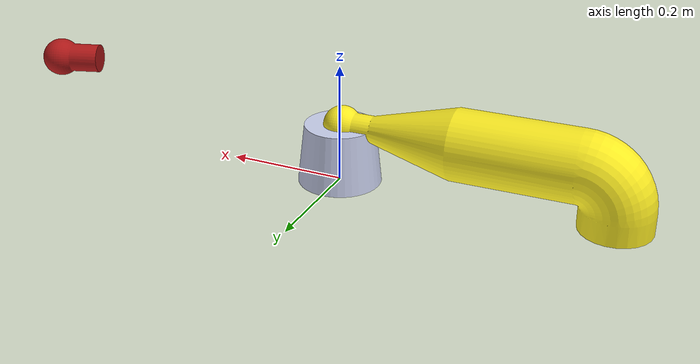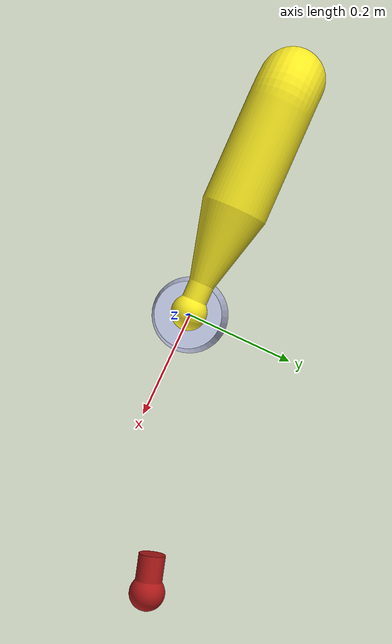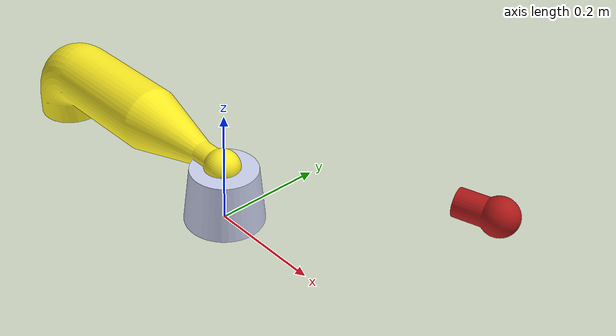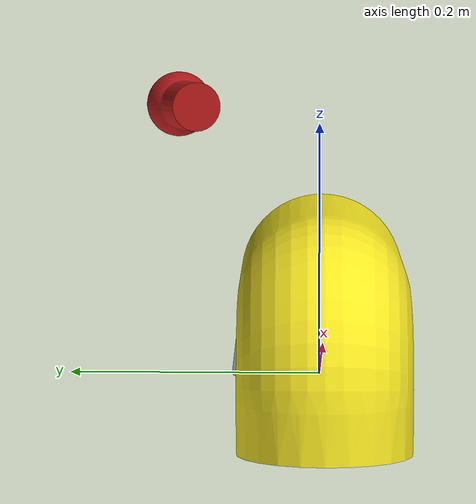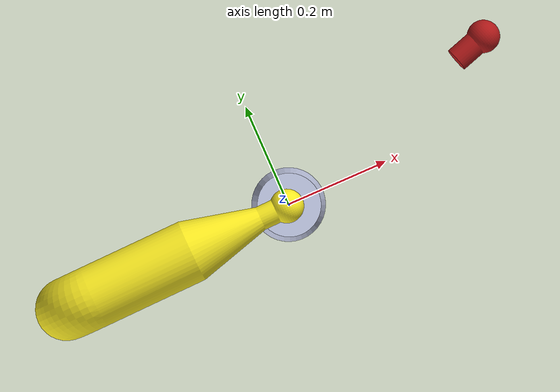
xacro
<?xml version="1.0" ?>
<robot name="onelink_gazebo" xmlns:xacro="http://wiki.ros.org/xacro">
  <xacro:include filename="$(find onelink_gazebo)/urdf/onelink_macro.xacro"/>

  <xacro:onelink_robot prefix=""/>

  <!-- Fix robot to Gazebo world -->
  <link name="world"/>
  <joint name="world-base_link-fixed" type="fixed">
    <parent link="world"/>
    <child link="base_link"/>
    <origin xyz="0.0 0.0 0.0" rpy="0.0 0.0 0.0" />
  </joint>
</robot>

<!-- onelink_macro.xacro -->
<robot xmlns:xacro="http://wiki.ros.org/xacro">
<xacro:include filename="$(find onelink_support)/urdf/onelink_macro.xacro"/>
<xacro:macro name="onelink_robot" params="prefix">
  <xacro:onelink prefix="${prefix}" />

  <!-- transmission list -->
  <transmission name="${prefix}tran1">
    <robotNamespace>/${prefix}</robotNamespace>
    <type>transmission_interface/SimpleTransmission</type>
    <joint name="${prefix}joint_1">
      <hardwareInterface>hardware_interface/PositionJointInterface</hardwareInterface>
    </joint>
    <actuator name="${prefix}motor1">
      <mechanicalReduction>1</mechanicalReduction>
    </actuator>
  </transmission>

  <gazebo reference="${prefix}base_link">
    <material>Gazebo/Yellow</material>
    <turnGravityOff>true</turnGravityOff>
  </gazebo>
  <gazebo reference="${prefix}link_1">
    <material>Gazebo/Yellow</material>
    <turnGravityOff>true</turnGravityOff>
  </gazebo>

  <gazebo>
    <plugin name="gazebo_ros_control" filename="libgazebo_ros_control.so">
      <robotNamespace>/${prefix}</robotNamespace>
      <robotSimType>gazebo_ros_control/DefaultRobotHWSim</robotSimType>
    </plugin>
  </gazebo>
  </xacro:macro>
</robot>

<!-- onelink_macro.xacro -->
<robot xmlns:xacro="http://wiki.ros.org/xacro">

  <xacro:macro name="onelink" params="prefix">
    <!-- links: main serial chain -->
  <link name="${prefix}base_link">
    <inertial>
      <origin xyz="8.7018E-07 2.7995E-08 0.047164" rpy="0 0 0" />
      <mass value="1.3101" />
      <inertia ixx="0.0024623" ixy="3.2088E-09" ixz="2.422E-09"
        			iyy="0.0024625" iyz="-4.6557E-09"
				izz="0.0027581" />
    </inertial>
    <visual>
      <origin xyz="0 0 0" rpy="0 0 0" />
      <geometry>
        <mesh filename="package://onelink_support/meshes/visual/base_link.STL" />
      </geometry>
      <material name="">
        <color rgba="0.79216 0.81961 0.93333 1" />
      </material>
    </visual>
    <collision>
      <origin xyz="0 0 0" rpy="0 0 0" />
      <geometry>
        <mesh filename="package://onelink_support/meshes/collision/base_link.STL" />
      </geometry>
    </collision>
  </link>

  <link name="${prefix}link_1">
    <inertial>
      <origin xyz="0.13171 0.040866 0.085302" rpy="0 0 0" />
      <mass value="4.3846" />
      <inertia ixx="0.013596" ixy="-0.015233" ixz="-0.0057172"
        			iyy="0.057965" iyz="-0.0017739"
        				izz="0.060952" />
    </inertial>
    <visual>
      <origin xyz="0 0 0" rpy="0 0 0" />
      <geometry>
        <mesh filename="package://onelink_support/meshes/visual/link_1.STL" />
      </geometry>
      <material name="">
        <color rgba="1 0.93725 0.13725 1" />
      </material>
    </visual>
    <collision>
      <origin xyz="0 0 0" rpy="0 0 0" />
      <geometry>
        <mesh filename="package://onelink_support/meshes/collision/link_1.STL" />
      </geometry>
    </collision>
  </link>

  <link name="${prefix}end_effector">
    <inertial>
      <origin xyz="-0.0202 -0.0062674 0" rpy="0 0 0" />
      <mass value="0.17604" />
      <inertia ixx="6.4514E-05" ixy="-2.3173E-05" ixz="-2.9024E-21"
        			iyy="0.00013201" iyz="-5.9931E-22"
        					izz="0.0001392" />
    </inertial>
    <visual>
      <origin xyz="0 0 0" rpy="0 0 0" />
      <geometry>
        <mesh filename="package://onelink_support/meshes/visual/end_effector.STL" />
      </geometry>
      <material name="">
        <color rgba="0.69412 0.098039 0.098039 1" />
      </material>
    </visual>
    <collision>
      <origin xyz="0 0 0" rpy="0 0 0" />
      <geometry>
        <mesh filename="package://onelink_support/meshes/collision/end_effector.STL" />
      </geometry>
    </collision>
  </link>

  <joint name="${prefix}joint_1" type="continuous">
    <origin xyz="0 0 0.1" rpy="0 0 0" />
    <parent link="${prefix}base_link" />
    <child link="${prefix}link_1" />
    <axis xyz="0 0 1" />
  </joint>

  <joint name="${prefix}joint_2" type="fixed">
    <origin xyz="0.44881 0.13925 0.095" rpy="0 0 0" />
    <parent link="${prefix}link_1" />
    <child link="${prefix}end_effector" />
    <axis xyz="0.95508 0.29634 0" />
  </joint>
  </xacro:macro>
</robot>
